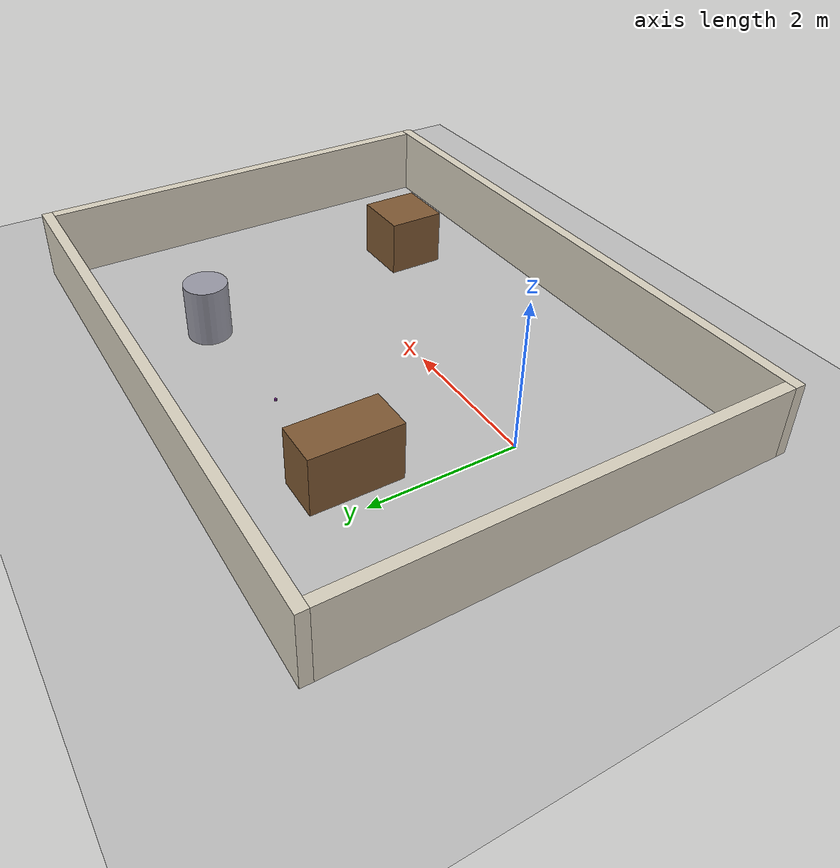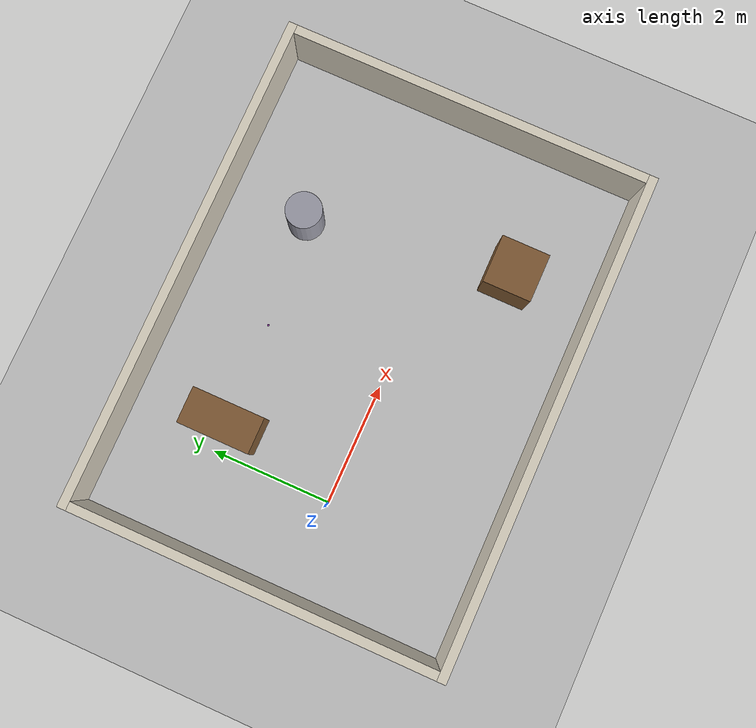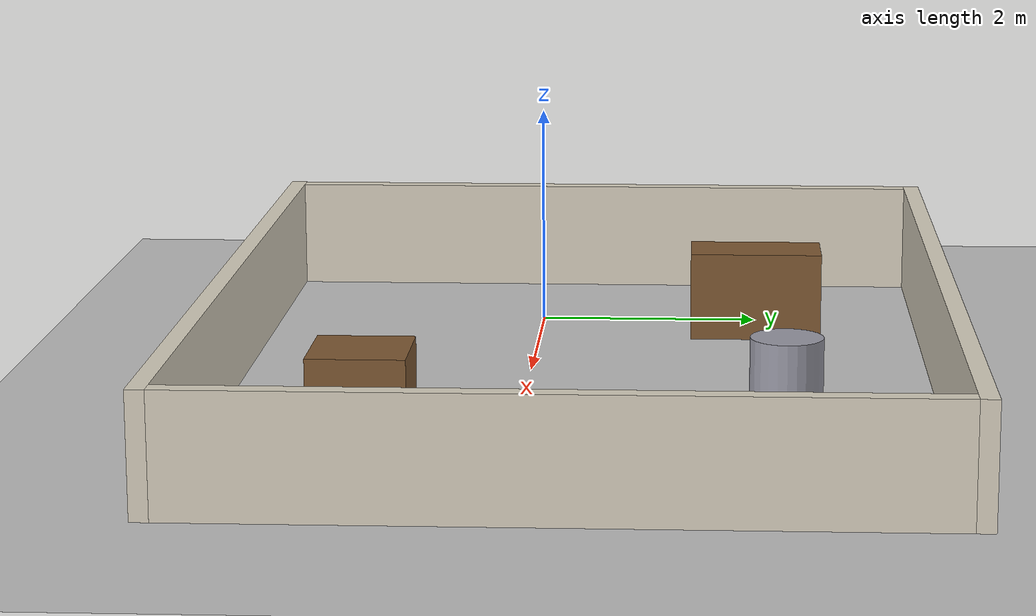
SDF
<?xml version="1.0" ?>
<!-- GENERAT de tools/gen_scene.py — world laborator + obiecte random.
     Obiectele si POI-urile (config/pois.yaml) sunt generate impreuna. -->
<sdf version="1.8">
  <world name="lab_world">

    <physics name="default_physics" type="ignored">
      <!-- 4 ms: injumatateste sarcina CPU a fizicii (fara GPU in Docker,
           pasul de 2 ms ducea simularea sub timp real si Nav2 sufoca) -->
      <max_step_size>0.004</max_step_size>
      <real_time_factor>1.0</real_time_factor>
    </physics>

    <plugin filename="gz-sim-physics-system"
            name="gz::sim::systems::Physics"/>
    <plugin filename="gz-sim-user-commands-system"
            name="gz::sim::systems::UserCommands"/>
    <plugin filename="gz-sim-scene-broadcaster-system"
            name="gz::sim::systems::SceneBroadcaster"/>
    <plugin filename="gz-sim-sensors-system"
            name="gz::sim::systems::Sensors">
      <render_engine>ogre2</render_engine>
    </plugin>

    <light type="directional" name="sun">
      <cast_shadows>false</cast_shadows>
      <pose>0 0 10 0 0 0</pose>
      <diffuse>0.9 0.9 0.9 1</diffuse>
      <specular>0.2 0.2 0.2 1</specular>
      <direction>-0.3 0.2 -0.9</direction>
    </light>

    <model name="ground_plane">
      <static>true</static>
      <link name="link">
        <collision name="collision">
          <geometry><plane><normal>0 0 1</normal><size>100 100</size></plane></geometry>
          <surface><friction><ode><mu>0.8</mu><mu2>0.8</mu2></ode></friction></surface>
        </collision>
        <visual name="visual">
          <geometry><plane><normal>0 0 1</normal><size>100 100</size></plane></geometry>
          <material><ambient>0.75 0.75 0.75 1</ambient><diffuse>0.75 0.75 0.75 1</diffuse></material>
        </visual>
      </link>
    </model>

    <!-- pereti laborator: interior x in [-1.5, 6.5], y in [-2.5, 3.5] -->
    <model name="walls">
      <static>true</static>
      <link name="link">
        <collision name="north_c"><pose>2.5 3.575 0.5 0 0 0</pose>
          <geometry><box><size>8.3 0.15 1.0</size></box></geometry></collision>
        <visual name="north_v"><pose>2.5 3.575 0.5 0 0 0</pose>
          <geometry><box><size>8.3 0.15 1.0</size></box></geometry>
          <material><ambient>0.85 0.82 0.75 1</ambient><diffuse>0.85 0.82 0.75 1</diffuse></material></visual>
        <collision name="south_c"><pose>2.5 -2.575 0.5 0 0 0</pose>
          <geometry><box><size>8.3 0.15 1.0</size></box></geometry></collision>
        <visual name="south_v"><pose>2.5 -2.575 0.5 0 0 0</pose>
          <geometry><box><size>8.3 0.15 1.0</size></box></geometry>
          <material><ambient>0.85 0.82 0.75 1</ambient><diffuse>0.85 0.82 0.75 1</diffuse></material></visual>
        <collision name="east_c"><pose>6.575 0.5 0.5 0 0 0</pose>
          <geometry><box><size>0.15 6.0 1.0</size></box></geometry></collision>
        <visual name="east_v"><pose>6.575 0.5 0.5 0 0 0</pose>
          <geometry><box><size>0.15 6.0 1.0</size></box></geometry>
          <material><ambient>0.85 0.82 0.75 1</ambient><diffuse>0.85 0.82 0.75 1</diffuse></material></visual>
        <collision name="west_c"><pose>-1.575 0.5 0.5 0 0 0</pose>
          <geometry><box><size>0.15 6.0 1.0</size></box></geometry></collision>
        <visual name="west_v"><pose>-1.575 0.5 0.5 0 0 0</pose>
          <geometry><box><size>0.15 6.0 1.0</size></box></geometry>
          <material><ambient>0.85 0.82 0.75 1</ambient><diffuse>0.85 0.82 0.75 1</diffuse></material></visual>
      </link>
    </model>

    <model name="box_a">
      <static>true</static>
      <pose>4.5 -1.2 0.4 0 0 0</pose>
      <link name="link">
        <collision name="c"><geometry><box><size>0.8 0.8 0.8</size></box></geometry></collision>
        <visual name="v"><geometry><box><size>0.8 0.8 0.8</size></box></geometry>
          <material><ambient>0.5 0.35 0.2 1</ambient><diffuse>0.5 0.35 0.2 1</diffuse></material></visual>
      </link>
    </model>
    <model name="box_b">
      <static>true</static>
      <pose>0.5 2.0 0.4 0 0 0</pose>
      <link name="link">
        <collision name="c"><geometry><box><size>0.6 1.2 0.8</size></box></geometry></collision>
        <visual name="v"><geometry><box><size>0.6 1.2 0.8</size></box></geometry>
          <material><ambient>0.5 0.35 0.2 1</ambient><diffuse>0.5 0.35 0.2 1</diffuse></material></visual>
      </link>
    </model>
    <model name="pillar">
      <static>true</static>
      <pose>4.0 2.2 0.4 0 0 0</pose>
      <link name="link">
        <collision name="c"><geometry><cylinder><radius>0.3</radius><length>0.8</length></cylinder></geometry></collision>
        <visual name="v"><geometry><cylinder><radius>0.3</radius><length>0.8</length></cylinder></geometry>
          <material><ambient>0.6 0.6 0.65 1</ambient><diffuse>0.6 0.6 0.65 1</diffuse></material></visual>
      </link>
    </model>

    <!-- ===== OBIECTE DE COLECTAT (generate random, seed=11) ===== -->
    <model name="obj_0">
      <pose>2.192 2.062 0.014 0 0 0.597</pose>
      <link name="link">
        <inertial><mass>0.05</mass><inertia><ixx>1e-5</ixx><iyy>1e-5</iyy><izz>1e-5</izz><ixy>0</ixy><ixz>0</ixz><iyz>0</iyz></inertia></inertial>
        <collision name="c"><geometry><box><size>0.028 0.028 0.028</size></box></geometry><surface><friction><ode><mu>1.2</mu><mu2>1.2</mu2></ode></friction></surface></collision>
        <visual name="v"><geometry><box><size>0.028 0.028 0.028</size></box></geometry><material><ambient>0.55 0.20 0.65 1</ambient><diffuse>0.55 0.20 0.65 1</diffuse></material></visual>
      </link>
      <plugin filename="gz-sim-odometry-publisher-system"
              name="gz::sim::systems::OdometryPublisher">
        <odom_topic>/model/obj_0/ground_truth</odom_topic>
        <odom_frame>gt_world</odom_frame>
        <robot_base_frame>obj_0_link</robot_base_frame>
        <odom_publish_frequency>10</odom_publish_frequency>
      </plugin>
    </model>
  </world>
</sdf>
